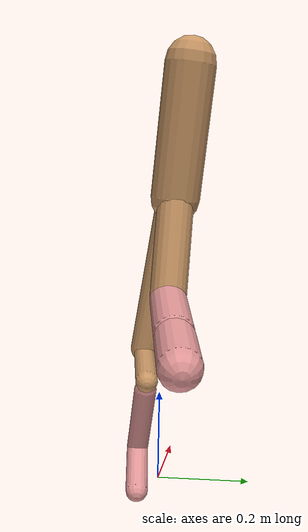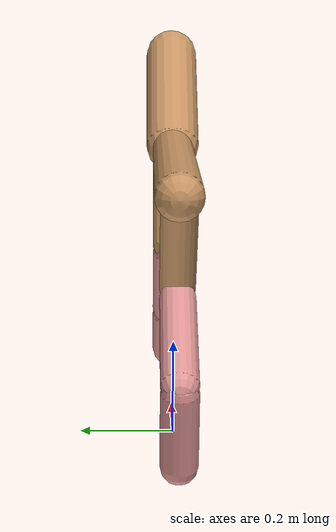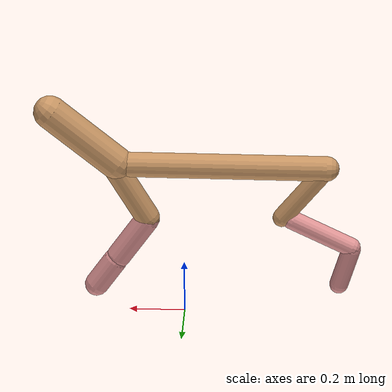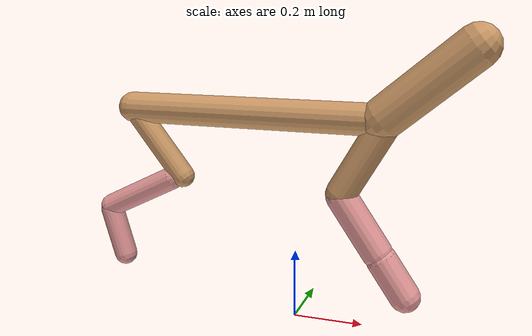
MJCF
<mujoco model="cheetah">
  <compiler angle="radian" coordinate="local" inertiafromgeom="true" settotalmass="14" />
  <default>
    <joint armature=".1" damping=".01" limited="true" solimplimit="0 .8 .03" solreflimit=".02 1" stiffness="8" />
    <geom conaffinity="0" condim="3" contype="1" friction="0.8 .1 .1" rgba="0.8 0.6 .4 1" solimp="0.0 0.8 0.01" solref="0.02 1" />
    <motor ctrllimited="true" ctrlrange="-1 1" />
  </default>
  <size nstack="300000" nuser_geom="1" />
  <option gravity="0 0 -9.81" timestep="0.01" />
  <worldbody>
    <body name="torso" pos="0.0 0.0 0.5911471143951567">
      <joint armature="0" axis="1 0 0" damping="0" limited="false" name="ignorex" pos="0 0 0" stiffness="0" type="slide" />
      <joint armature="0" axis="0 0 1" damping="0" limited="false" name="ignorez" pos="0 0 0" stiffness="0" type="slide" />
      <joint armature="0" axis="0 1 0" damping="0" limited="false" name="ignorey" pos="0 0 0" stiffness="0" type="hinge" />
      <geom fromto="-0.5 0.0 0.0 0.25112983677172834 0.0 0.0" name="torso" size="0.044644824248010896" type="capsule" />
      <geom axisangle="0 1 0 .87" name="head" pos="0.35112983677172827 0.0 0.1" size="0.05883563429366093 0.15" type="capsule" />

      <body name="bthigh" pos="-.5 0 0">
        <joint axis="0 1 0" damping="6" name="bthigh" pos="0 0 0" range="-.52 1.05" stiffness="240" type="hinge" />
        <geom axisangle="0 1 0 -3.8" name="bthigh" pos="0.08172930312456525 0.0 -0.1062480940619348" size="0.03401573771518485 0.11503382907335809" type="capsule" />
        <body name="bshin" pos="0.12345860624913048 0.0 -0.2024961881238696">
          <joint axis="0 1 0" damping="4.5" name="bshin" pos="0 0 0" range="-.785 .785" stiffness="180" type="hinge" />
          <geom axisangle="0 1 0 -2.03" name="bshin" pos="-0.1122732157721314 0.0 -0.0561366078860657" rgba="0.9 0.6 0.6 1" size="0.03401573771518485 0.11900051283450837" type="capsule" />
          <body name="bfoot" pos="-0.2245464315442628 0.0 -0.1122732157721314">
            <joint axis="0 1 0" damping="3" name="bfoot" pos="0 0 0" range="-.4 .785" stiffness="120" type="hinge" />
            <geom axisangle="0 1 0 -.27" name="bfoot" pos="0.02426010313966456 0.0 -0.07844100015158208" rgba="0.9 0.6 0.6 1" size="0.03401573771518485 0.07457365470962525" type="capsule" />
            <inertial mass="10" />
          </body>
        </body>
      </body>
      <body name="fthigh" pos="0.2511298367717283 0.0 0.0">
        <joint axis="0 1 0" damping="4.5" name="fthigh" pos="0 0 0" range="-1.5 0.8" stiffness="180" type="hinge" />
        <geom axisangle="0 1 0 .52" name="fthigh" pos="-0.06236949852674812 0.0 -0.10691914033156819" size="0.04361880261479953 0.11785624081020485" type="capsule" />
        <body name="fshin" pos="-0.12473899705349624 0.0 -0.21383828066313637">
          <joint axis="0 1 0" damping="3" name="fshin" pos="0 0 0" range="-1.2 1.1" stiffness="120" type="hinge" />
          <geom axisangle="0 1 0 -.6" name="fshin" pos="0.05793344388523468 0.0 -0.08021553768724801" rgba="0.9 0.6 0.6 1" size="0.04361880261479953 0.0939305377885843" type="capsule" />
          <body name="ffoot" pos="0.11586688777046936 0.0 -0.16043107537449602">
            <joint axis="0 1 0" damping="1.5" name="ffoot" pos="0 0 0" range="-3.1 -0.3" stiffness="60" type="hinge" />
            <geom axisangle="0 1 0 -.6" name="ffoot" pos="0.04068994592478669 0.0 -0.06329547143855709" rgba="0.9 0.6 0.6 1" size="0.04361880261479953 0.06202960042642361" type="capsule" />
            <inertial mass="10" />
          </body>
        </body>
      </body>
    </body>
  </worldbody>
  <actuator>
    <motor gear="120" joint="bthigh" name="bthigh" />
    <motor gear="90" joint="bshin" name="bshin" />
    <motor gear="60" joint="bfoot" name="bfoot" />
    <motor gear="120" joint="fthigh" name="fthigh" />
    <motor gear="60" joint="fshin" name="fshin" />
    <motor gear="30" joint="ffoot" name="ffoot" />
  </actuator>
</mujoco>
